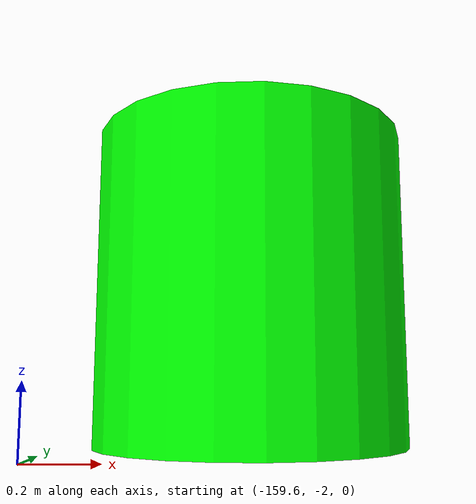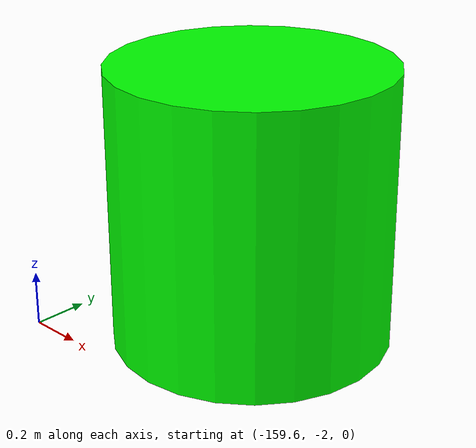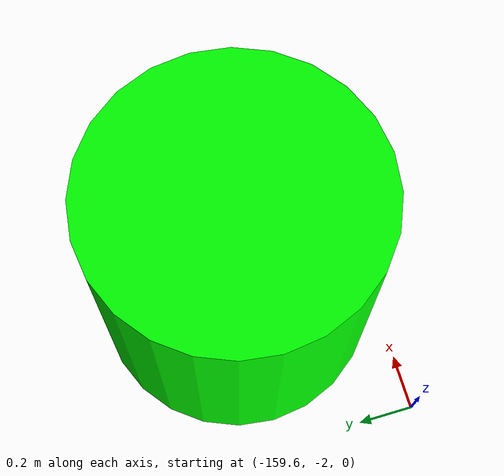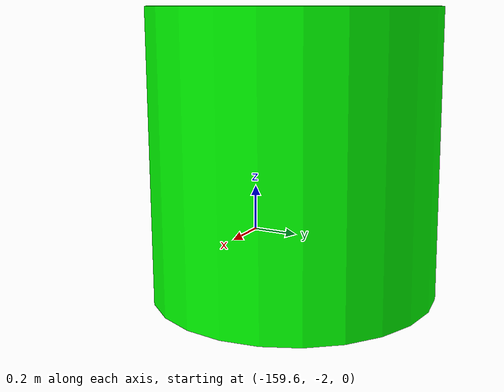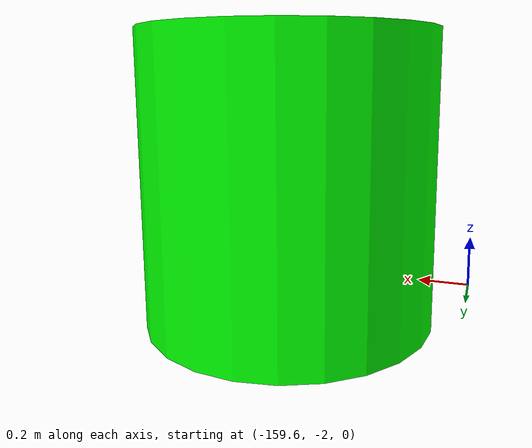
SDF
<sdf version="1.6">
<model name="cylinder_394">
<pose>-159.0 -1.5 0.5 0 0 0</pose>
<link name="cylinder_link">
<inertial>
<inertia>
<ixx>2</ixx>
<ixy>0</ixy>
<ixz>0</ixz>
<iyy>2</iyy>
<iyz>0</iyz>
<izz>2</izz>
</inertia>
<mass>2.0</mass>
</inertial>
<collision name="cylinder_collision">
<geometry>
<cylinder>
<radius>0.5</radius>
<length>1.0</length>
</cylinder>
</geometry>
</collision>
<visual name="cylinder_visual">
<geometry>
<cylinder>
<radius>0.5</radius>
<length>1.0</length>
</cylinder>
</geometry>
<material>
<ambient>0 1 0 1</ambient>
<diffuse>0 1 0 1</diffuse>
<specular>0 1 0 1</specular>
</material>
</visual>
</link>
</model>
</sdf>
